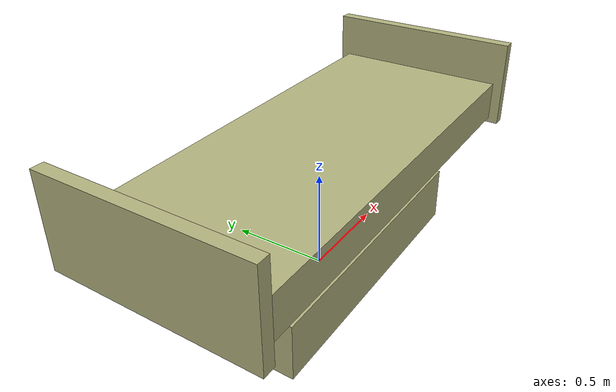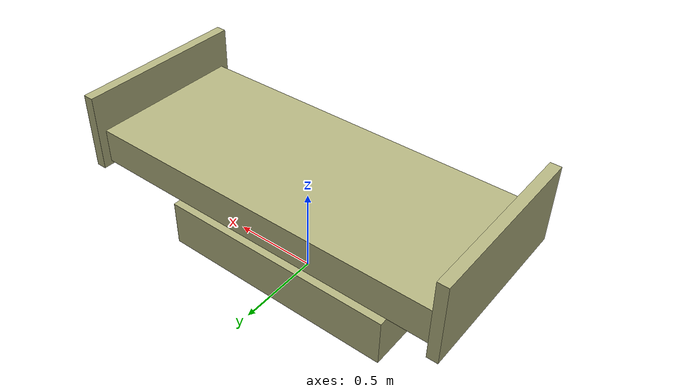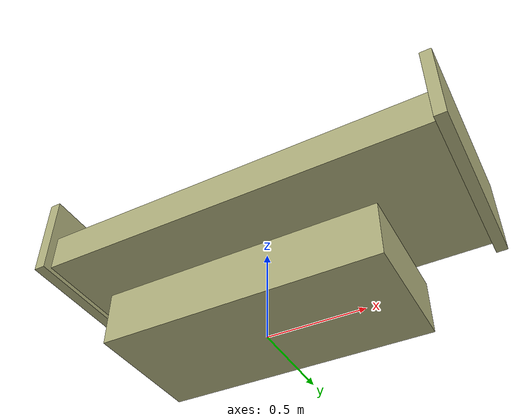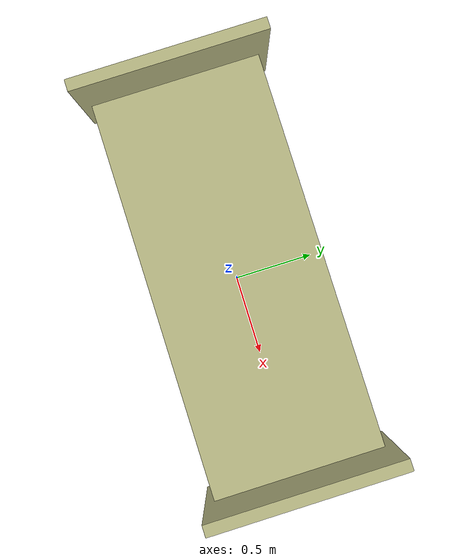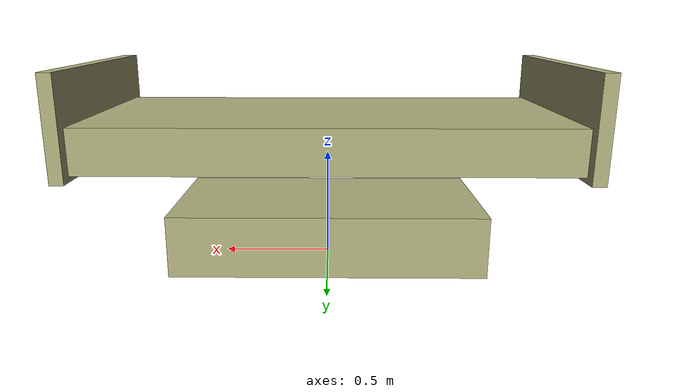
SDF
<?xml version="1.0" ?>
<sdf version="1.6">
  <model name="robotics_testlab_B/bed">
    <link name="1">
      <collision name="1">
        <geometry>
          <box>
            <size>2.1 0.9 0.2</size>
          </box>
        </geometry>
        <name>1</name>
      </collision>
      <visual name="1">
        <geometry>
          <box>
            <size>2.1 0.9 0.2</size>
          </box>
        </geometry>
        <material>
          <ambient>0.7 0.7 0.5 1</ambient>
        </material>
        <name>1</name>
      </visual>
      <pose>0.0 0.0 0.6 0 0 0</pose>
      <name>1</name>
    </link>
    <link name="2">
      <collision name="2">
        <geometry>
          <box>
            <size>1.42 0.65 0.28</size>
          </box>
        </geometry>
        <name>2</name>
      </collision>
      <visual name="2">
        <geometry>
          <box>
            <size>1.42 0.65 0.28</size>
          </box>
        </geometry>
        <material>
          <ambient>0.7 0.7 0.5 1</ambient>
        </material>
        <name>2</name>
      </visual>
      <pose>0.0 0.0 0.14 0 0 0</pose>
      <name>2</name>
    </link>
    <link name="3">
      <collision name="3">
        <geometry>
          <box>
            <size>0.06 1.0 0.45</size>
          </box>
        </geometry>
        <name>3</name>
      </collision>
      <visual name="3">
        <geometry>
          <box>
            <size>0.06 1.0 0.45</size>
          </box>
        </geometry>
        <material>
          <ambient>0.7 0.7 0.5 1</ambient>
        </material>
        <name>3</name>
      </visual>
      <pose>1.08 0.0 0.7 0 0 0</pose>
      <name>3</name>
    </link>
    <link name="4">
      <collision name="4">
        <geometry>
          <box>
            <size>0.06 1.0 0.45</size>
          </box>
        </geometry>
        <name>4</name>
      </collision>
      <visual name="4">
        <geometry>
          <box>
            <size>0.06 1.0 0.45</size>
          </box>
        </geometry>
        <material>
          <ambient>0.7 0.7 0.5 1</ambient>
        </material>
        <name>4</name>
      </visual>
      <pose>-1.08 0.0 0.7 0 0 0</pose>
      <name>4</name>
    </link>
    <link name="in_front_of">
      <virtual_volume name="in_front_of">
        <geometry>
          <box>
            <size>2 0.6 0.01</size>
          </box>
        </geometry>
        <pose>0.0 -0.9 0.005 0 0 0</pose>
        <name>in_front_of</name>
      </virtual_volume>
      <name>in_front_of</name>
    </link>
    <static>true</static>
    <name>robotics_testlab_B/bed</name>
  </model>
</sdf>
